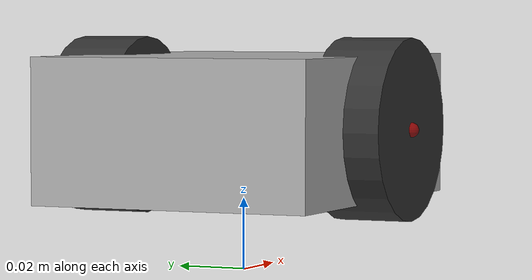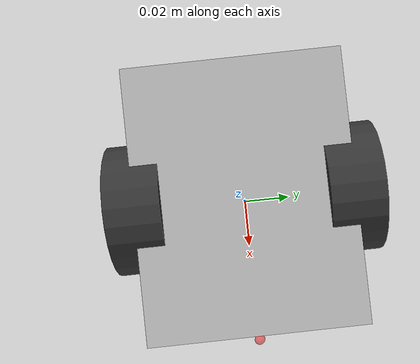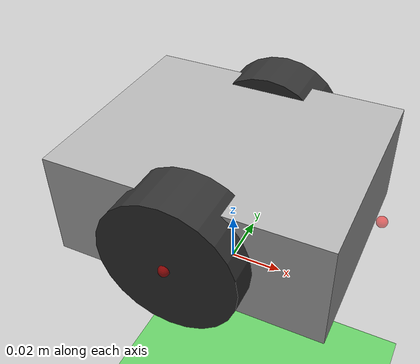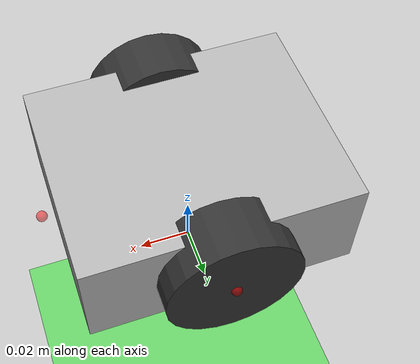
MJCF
<?xml version="1.0" ?>
<mujoco model="maze_robot">
  <!-- ========== COMPILATION OPTIONS ========== -->
  <compiler angle="radian" inertiafromgeom="true" />

  <!-- ========== GLOBAL SETTINGS ========== -->
  <option timestep="0.001" viscosity="0.0" gravity="0 0 -9.81">
    <flag warmstart="disable" />
  </option>

  <!-- ========== ASSETS ========== -->
  <asset>
    <!-- Materials for visualization -->
    <material name="robot_body" rgba="0.7 0.7 0.7 1.0" />
    <material name="wheel" rgba="0.2 0.2 0.2 1.0" />
    <material name="caster" rgba="0.3 0.3 0.7 1.0" />
    <material name="groundplane" rgba="0.4 0.8 0.4 1.0" />
  </asset>

  <!-- ========== BODIES ========== -->
  <worldbody>
    <!-- World ground plane -->
    <geom name="ground" type="plane" size="10 10 0.1" pos="0 0 -0.1" material="groundplane" />

    <!-- ========== ROBOT BODY ========== -->
    <body name="robot" pos="0 0 0.04" euler="0 0 0">
      <joint name="root" type="free" />
      <!-- Main chassis (box) -->
      <inertial pos="0 0 0" mass="0.5" diaginertia="0.01 0.01 0.01" />
      <geom name="chassis" type="box" size="0.05 0.04 0.02" material="robot_body" />

      <!-- Left wheel -->
      <body name="left_wheel" pos="0 0.04 0">
        <inertial pos="0 0 0" mass="0.1" diaginertia="0.001 0.001 0.001" />
        <geom name="left_wheel_geom" type="cylinder" size="0.025" fromto="0 -0.01 0 0 0.01 0" material="wheel" />
        <joint name="left_wheel" type="hinge" axis="0 1 0" pos="0 0 0" />
      </body>

      <!-- Right wheel -->
      <body name="right_wheel" pos="0 -0.04 0">
        <inertial pos="0 0 0" mass="0.1" diaginertia="0.001 0.001 0.001" />
        <geom name="right_wheel_geom" type="cylinder" size="0.025" fromto="0 -0.01 0 0 0.01 0" material="wheel" />
        <joint name="right_wheel" type="hinge" axis="0 1 0" pos="0 0 0" />
      </body>

      <!-- Caster wheel (passive ball for support) -->
      <body name="caster" pos="0.04 0 -0.015">
        <inertial pos="0 0 0" mass="0.05" diaginertia="0.0001 0.0001 0.0001" />
        <geom name="caster_geom" type="sphere" size="0.01" material="caster" />
        <joint name="caster_x" type="slide" axis="1 0 0" pos="0 0 0" limited="false" />
        <joint name="caster_y" type="slide" axis="0 1 0" pos="0 0 0" limited="false" />
        <joint name="caster_z" type="slide" axis="0 0 1" pos="0 0 0" limited="false" />
      </body>

      <!-- ========== RANGEFINDER SENSORS ========== -->
      <!-- Front rangefinder (x-axis, +x direction) -->
      <site name="sensor_front" type="sphere" size="0.002" pos="0.055 0 0" rgba="1 0 0 0.5" />

      <!-- Front-left rangefinder (45 degrees left of front) -->
      <site name="sensor_front_left" type="sphere" size="0.002" pos="0.045 0.035 0" rgba="1 0 0 0.5" />

      <!-- Left rangefinder (y-axis, +y direction) -->
      <site name="sensor_left" type="sphere" size="0.002" pos="0 0.050 0" rgba="1 0 0 0.5" />

      <!-- Front-right rangefinder (45 degrees right of front) -->
      <site name="sensor_front_right" type="sphere" size="0.002" pos="0.045 -0.035 0" rgba="1 0 0 0.5" />

      <!-- Right rangefinder (y-axis, -y direction) -->
      <site name="sensor_right" type="sphere" size="0.002" pos="0 -0.050 0" rgba="1 0 0 0.5" />
    </body>
  </worldbody>

  <!-- ========== ACTUATORS ========== -->
  <actuator>
    <!-- Left wheel motor (torque controlled) -->
    <motor name="left_wheel_motor" joint="left_wheel" ctrlrange="-1.0 1.0" />

    <!-- Right wheel motor (torque controlled) -->
    <motor name="right_wheel_motor" joint="right_wheel" ctrlrange="-1.0 1.0" />
  </actuator>

  <!-- ========== SENSORS ========== -->
  <sensor>
    <!-- Joint feedback -->
    <jointvel name="left_wheel_vel" joint="left_wheel" />
    <jointvel name="right_wheel_vel" joint="right_wheel" />
    <jointpos name="left_wheel_pos" joint="left_wheel" />
    <jointpos name="right_wheel_pos" joint="right_wheel" />

    <!-- Position of robot body -->
    <framepos name="robot_xpos" objtype="body" objname="robot" />
    <framequat name="robot_quat" objtype="body" objname="robot" />
    <framelinvel name="robot_xvelp" objtype="body" objname="robot" />
    <frameangvel name="robot_xangvel" objtype="body" objname="robot" />

    <!-- Rangefinder sensors for wall-following -->
    <rangefinder name="range_front" site="sensor_front" />
    <rangefinder name="range_front_left" site="sensor_front_left" />
    <rangefinder name="range_left" site="sensor_left" />
    <rangefinder name="range_front_right" site="sensor_front_right" />
    <rangefinder name="range_right" site="sensor_right" />
  </sensor>
</mujoco>
